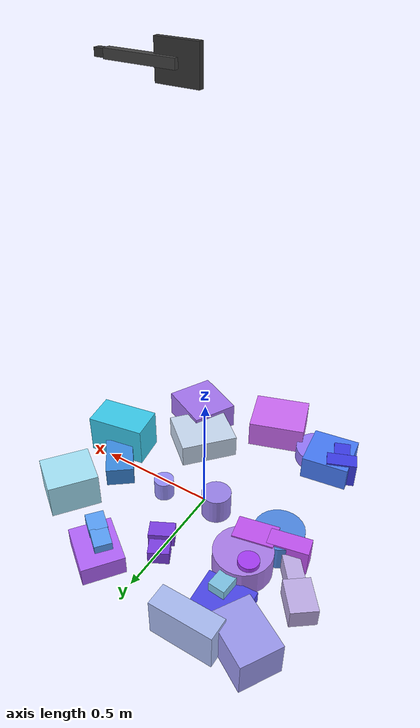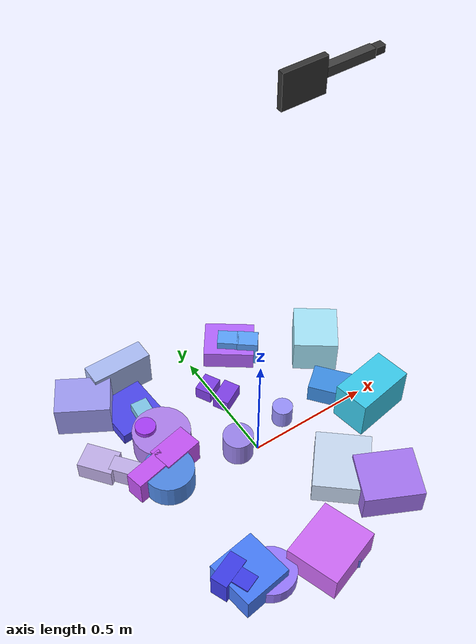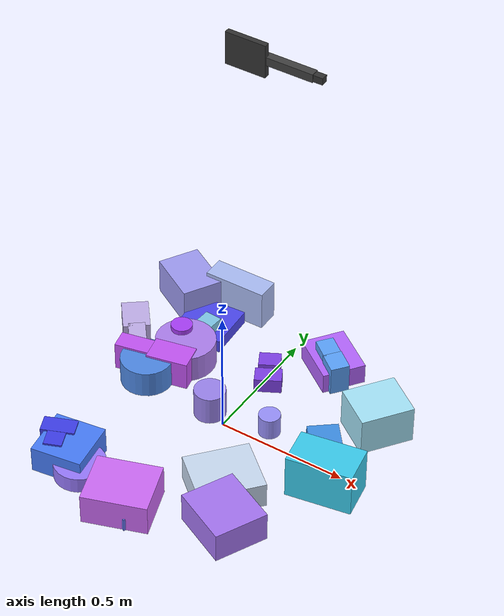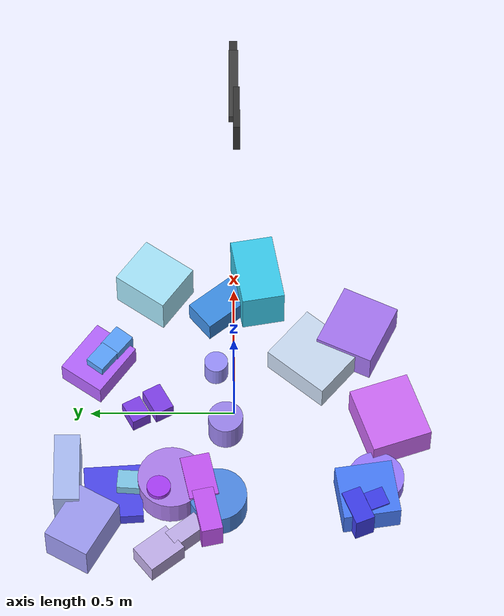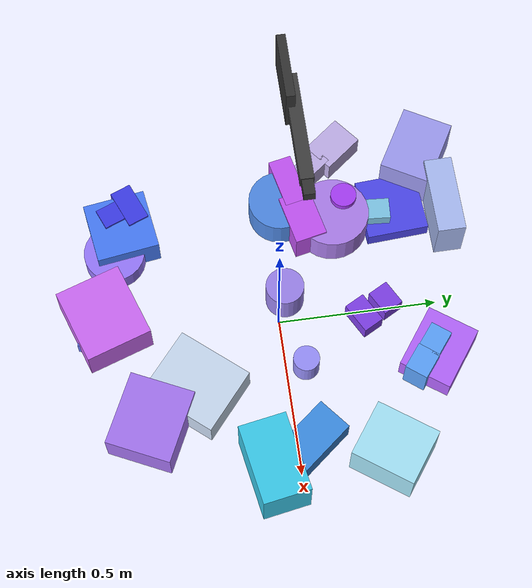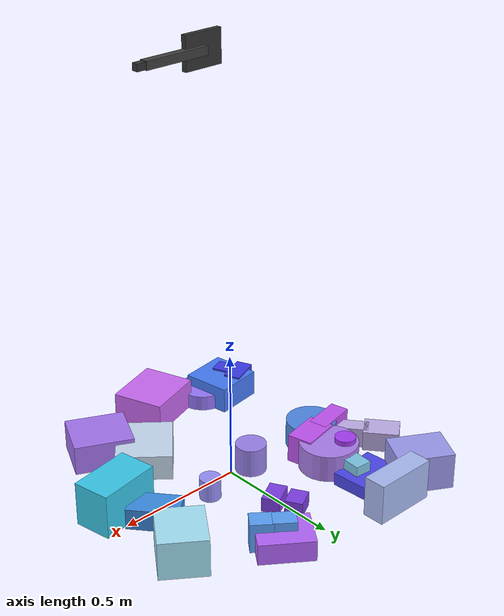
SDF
<sdf version="1.7">
 <world name="warehouse">
  <physics type="ode"><max_step_size>0.003</max_step_size><real_time_factor>1.0</real_time_factor></physics>
  <plugin name="ignition::gazebo::systems::Physics" filename="libignition-gazebo-physics-system.so"/>
  <plugin name="ignition::gazebo::systems::UserCommands" filename="libignition-gazebo-user-commands-system.so"/>
  <plugin name="ignition::gazebo::systems::SceneBroadcaster" filename="libignition-gazebo-scene-broadcaster-system.so"/>
  <plugin filename="gz-sim-imu-system" name="gz::sim::systems::Imu"/>
  <plugin filename="gz-sim-sensors-system" name="gz::sim::systems::Sensors">
   <render_engine>ogre2</render_engine>
  </plugin>
  <plugin filename="gz-sim-contact-system" name="gz::sim::systems::Contact"/>
  <scene>
   <ambient>0.4 0.4 0.4 1</ambient>
   <background>0.7 0.7 0.7 1</background>
   <shadows>0</shadows>
   <grid>false</grid>
  </scene>
  <model name="ground_plane">
   <static>true</static>
   <link name="link">
    <collision name="collision">
     <geometry><plane><normal>0.0 0.0 1</normal><size>1 1</size></plane></geometry>
    </collision>
   </link>
  </model>
  <model name="obj_box_0">
   <static>0</static>
   <pose>0.4084 0.0471 0.0415 0.0000 0.0000 -0.8880</pose>
   <link name="link">
    <visual name="obj_box_0_visual">
     <geometry><box><size>0.193 0.116 0.083</size></box></geometry>
     <material><ambient>0.24 0.56 0.90 1.00</ambient><diffuse>0.24 0.56 0.90 1.00</diffuse></material>
    </visual>
    <collision name="obj_box_0_collision">
     <geometry><box><size>0.193 0.116 0.083</size></box></geometry>
    </collision>
    <inertial>
     <mass>0.374</mass>
     <inertia>
      <ixx>0.010000</ixx>
      <iyy>0.010000</iyy>
      <izz>0.010000</izz>
      <ixy>0.000000</ixy>
      <ixz>0.000000</ixz>
      <iyz>0.000000</iyz>
     </inertia>
    </inertial>
   </link>
  </model>
  <model name="obj_L_1">
   <static>0</static>
   <pose>-0.0145 0.3396 0.029 0.0000 0.0000 -1.0742</pose>
   <link name="linkA">
    <visual name="obj_L_1_A_visual">
     <geometry><box><size>0.068 0.083 0.058</size></box></geometry>
     <material><ambient>0.50 0.25 0.91 1.00</ambient><diffuse>0.50 0.25 0.91 1.00</diffuse></material>
    </visual>
    <collision name="obj_L_1_A_collision">
     <geometry><box><size>0.068 0.083 0.058</size></box></geometry>
    </collision>
    <inertial>
     <mass>0.200</mass>
     <inertia>
      <ixx>0.010000</ixx>
      <iyy>0.010000</iyy>
      <izz>0.010000</izz>
      <ixy>0.000000</ixy>
      <ixz>0.000000</ixz>
      <iyz>0.000000</iyz>
     </inertia>
    </inertial>
   </link>
   <link name="linkB">
    <visual name="obj_L_1_B_visual">
     <geometry><box><size>0.068 0.102 0.058</size></box></geometry>
     <material><ambient>0.50 0.25 0.91 1.00</ambient><diffuse>0.50 0.25 0.91 1.00</diffuse></material>
    </visual>
    <collision name="obj_L_1_B_collision">
     <geometry><box><size>0.068 0.102 0.058</size></box></geometry>
    </collision>
    <inertial>
     <mass>0.200</mass>
     <inertia>
      <ixx>0.010000</ixx>
      <iyy>0.010000</iyy>
      <izz>0.010000</izz>
      <ixy>0.000000</ixy>
      <ixz>0.000000</ixz>
      <iyz>0.000000</iyz>
     </inertia>
    </inertial>
    <pose>0.0850 0.0000 0.0000 0.0000 0.0000 0.0000</pose>
   </link>
   <joint name="obj_L_1_fixed" type="fixed"><parent>linkA</parent><child>linkB</child></joint>
  </model>
  <model name="obj_L_2">
   <static>0</static>
   <pose>-0.3084 0.3435 0.046 0.0000 0.0000 -1.6410</pose>
   <link name="linkA">
    <visual name="obj_L_2_A_visual">
     <geometry><box><size>0.111 0.068 0.092</size></box></geometry>
     <material><ambient>0.50 0.78 0.91 1.00</ambient><diffuse>0.50 0.78 0.91 1.00</diffuse></material>
    </visual>
    <collision name="obj_L_2_A_collision">
     <geometry><box><size>0.111 0.068 0.092</size></box></geometry>
    </collision>
    <inertial>
     <mass>0.200</mass>
     <inertia>
      <ixx>0.010000</ixx>
      <iyy>0.010000</iyy>
      <izz>0.010000</izz>
      <ixy>0.000000</ixy>
      <ixz>0.000000</ixz>
      <iyz>0.000000</iyz>
     </inertia>
    </inertial>
   </link>
   <link name="linkB">
    <visual name="obj_L_2_B_visual">
     <geometry><box><size>0.111 0.057 0.092</size></box></geometry>
     <material><ambient>0.50 0.78 0.91 1.00</ambient><diffuse>0.50 0.78 0.91 1.00</diffuse></material>
    </visual>
    <collision name="obj_L_2_B_collision">
     <geometry><box><size>0.111 0.057 0.092</size></box></geometry>
    </collision>
    <inertial>
     <mass>0.200</mass>
     <inertia>
      <ixx>0.010000</ixx>
      <iyy>0.010000</iyy>
      <izz>0.010000</izz>
      <ixy>0.000000</ixy>
      <ixz>0.000000</ixz>
      <iyz>0.000000</iyz>
     </inertia>
    </inertial>
    <pose>0.0838 0.0000 0.0000 0.0000 0.0000 0.0000</pose>
   </link>
   <joint name="obj_L_2_fixed" type="fixed"><parent>linkA</parent><child>linkB</child></joint>
  </model>
  <model name="obj_L_3">
   <static>0</static>
   <pose>0.1648 0.4589 0.0585 0.0000 0.0000 -0.6620</pose>
   <link name="linkA">
    <visual name="obj_L_3_A_visual">
     <geometry><box><size>0.087 0.069 0.117</size></box></geometry>
     <material><ambient>0.36 0.64 0.99 1.00</ambient><diffuse>0.36 0.64 0.99 1.00</diffuse></material>
    </visual>
    <collision name="obj_L_3_A_collision">
     <geometry><box><size>0.087 0.069 0.117</size></box></geometry>
    </collision>
    <inertial>
     <mass>0.200</mass>
     <inertia>
      <ixx>0.010000</ixx>
      <iyy>0.010000</iyy>
      <izz>0.010000</izz>
      <ixy>0.000000</ixy>
      <ixz>0.000000</ixz>
      <iyz>0.000000</iyz>
     </inertia>
    </inertial>
   </link>
   <link name="linkB">
    <visual name="obj_L_3_B_visual">
     <geometry><box><size>0.087 0.073 0.117</size></box></geometry>
     <material><ambient>0.36 0.64 0.99 1.00</ambient><diffuse>0.36 0.64 0.99 1.00</diffuse></material>
    </visual>
    <collision name="obj_L_3_B_collision">
     <geometry><box><size>0.087 0.073 0.117</size></box></geometry>
    </collision>
    <inertial>
     <mass>0.200</mass>
     <inertia>
      <ixx>0.010000</ixx>
      <iyy>0.010000</iyy>
      <izz>0.010000</izz>
      <ixy>0.000000</ixy>
      <ixz>0.000000</ixz>
      <iyz>0.000000</iyz>
     </inertia>
    </inertial>
    <pose>0.0805 0.0000 0.0000 0.0000 0.0000 0.0000</pose>
   </link>
   <joint name="obj_L_3_fixed" type="fixed"><parent>linkA</parent><child>linkB</child></joint>
  </model>
  <model name="obj_cyl_4">
   <static>0</static>
   <pose>-0.2833 -0.4864 0.031 0.0000 0.0000 1.8573</pose>
   <link name="link">
    <visual name="obj_cyl_4_visual">
     <geometry><cylinder><radius>0.096</radius><length>0.062</length></cylinder></geometry>
     <material><ambient>0.60 0.48 1.00 1.00</ambient><diffuse>0.60 0.48 1.00 1.00</diffuse></material>
    </visual>
    <collision name="obj_cyl_4_collision">
     <geometry><cylinder><radius>0.096</radius><length>0.062</length></cylinder></geometry>
    </collision>
    <inertial>
     <mass>0.361</mass>
     <inertia>
      <ixx>0.010000</ixx>
      <iyy>0.010000</iyy>
      <izz>0.010000</izz>
      <ixy>0.000000</ixy>
      <ixz>0.000000</ixz>
      <iyz>0.000000</iyz>
     </inertia>
    </inertial>
   </link>
  </model>
  <model name="obj_box_5">
   <static>0</static>
   <pose>0.4856 -0.0819 0.087 0.0000 0.0000 -1.3965</pose>
   <link name="link">
    <visual name="obj_box_5_visual">
     <geometry><box><size>0.149 0.248 0.174</size></box></geometry>
     <material><ambient>0.23 0.80 0.93 1.00</ambient><diffuse>0.23 0.80 0.93 1.00</diffuse></material>
    </visual>
    <collision name="obj_box_5_collision">
     <geometry><box><size>0.149 0.248 0.174</size></box></geometry>
    </collision>
    <inertial>
     <mass>1.288</mass>
     <inertia>
      <ixx>0.010000</ixx>
      <iyy>0.010000</iyy>
      <izz>0.010000</izz>
      <ixy>0.000000</ixy>
      <ixz>0.000000</ixz>
      <iyz>0.000000</iyz>
     </inertia>
    </inertial>
   </link>
  </model>
  <model name="obj_box_6">
   <static>0</static>
   <pose>-0.3337 0.4126 0.0255 0.0000 0.0000 0.0656</pose>
   <link name="link">
    <visual name="obj_box_6_visual">
     <geometry><box><size>0.197 0.196 0.051</size></box></geometry>
     <material><ambient>0.30 0.28 0.93 1.00</ambient><diffuse>0.30 0.28 0.93 1.00</diffuse></material>
    </visual>
    <collision name="obj_box_6_collision">
     <geometry><box><size>0.197 0.196 0.051</size></box></geometry>
    </collision>
    <inertial>
     <mass>0.394</mass>
     <inertia>
      <ixx>0.010000</ixx>
      <iyy>0.010000</iyy>
      <izz>0.010000</izz>
      <ixy>0.000000</ixy>
      <ixz>0.000000</ixz>
      <iyz>0.000000</iyz>
     </inertia>
    </inertial>
   </link>
  </model>
  <model name="obj_L_7">
   <static>0</static>
   <pose>-0.4341 0.0908 0.057 0.0000 0.0000 0.2148</pose>
   <link name="linkA">
    <visual name="obj_L_7_A_visual">
     <geometry><box><size>0.161 0.074 0.114</size></box></geometry>
     <material><ambient>0.77 0.33 0.96 1.00</ambient><diffuse>0.77 0.33 0.96 1.00</diffuse></material>
    </visual>
    <collision name="obj_L_7_A_collision">
     <geometry><box><size>0.161 0.074 0.114</size></box></geometry>
    </collision>
    <inertial>
     <mass>0.271</mass>
     <inertia>
      <ixx>0.010000</ixx>
      <iyy>0.010000</iyy>
      <izz>0.010000</izz>
      <ixy>0.000000</ixy>
      <ixz>0.000000</ixz>
      <iyz>0.000000</iyz>
     </inertia>
    </inertial>
   </link>
   <link name="linkB">
    <visual name="obj_L_7_B_visual">
     <geometry><box><size>0.161 0.102 0.114</size></box></geometry>
     <material><ambient>0.77 0.33 0.96 1.00</ambient><diffuse>0.77 0.33 0.96 1.00</diffuse></material>
    </visual>
    <collision name="obj_L_7_B_collision">
     <geometry><box><size>0.161 0.102 0.114</size></box></geometry>
    </collision>
    <inertial>
     <mass>0.372</mass>
     <inertia>
      <ixx>0.010000</ixx>
      <iyy>0.010000</iyy>
      <izz>0.010000</izz>
      <ixy>0.000000</ixy>
      <ixz>0.000000</ixz>
      <iyz>0.000000</iyz>
     </inertia>
    </inertial>
    <pose>0.1313 0.0000 0.0000 0.0000 0.0000 0.0000</pose>
   </link>
   <joint name="obj_L_7_fixed" type="fixed"><parent>linkA</parent><child>linkB</child></joint>
  </model>
  <model name="obj_box_8">
   <static>0</static>
   <pose>0.2922 -0.4316 0.0585 0.0000 0.0000 -2.0180</pose>
   <link name="link">
    <visual name="obj_box_8_visual">
     <geometry><box><size>0.205 0.232 0.117</size></box></geometry>
     <material><ambient>0.65 0.46 0.95 1.00</ambient><diffuse>0.65 0.46 0.95 1.00</diffuse></material>
    </visual>
    <collision name="obj_box_8_collision">
     <geometry><box><size>0.205 0.232 0.117</size></box></geometry>
    </collision>
    <inertial>
     <mass>1.114</mass>
     <inertia>
      <ixx>0.010000</ixx>
      <iyy>0.010000</iyy>
      <izz>0.010000</izz>
      <ixy>0.000000</ixy>
      <ixz>0.000000</ixz>
      <iyz>0.000000</iyz>
     </inertia>
    </inertial>
   </link>
  </model>
  <model name="obj_L_9">
   <static>0</static>
   <pose>-0.4188 -0.4200 0.056 0.0000 0.0000 -1.1816</pose>
   <link name="linkA">
    <visual name="obj_L_9_A_visual">
     <geometry><box><size>0.068 0.126 0.112</size></box></geometry>
     <material><ambient>0.24 0.24 0.92 1.00</ambient><diffuse>0.24 0.24 0.92 1.00</diffuse></material>
    </visual>
    <collision name="obj_L_9_A_collision">
     <geometry><box><size>0.068 0.126 0.112</size></box></geometry>
    </collision>
    <inertial>
     <mass>0.200</mass>
     <inertia>
      <ixx>0.010000</ixx>
      <iyy>0.010000</iyy>
      <izz>0.010000</izz>
      <ixy>0.000000</ixy>
      <ixz>0.000000</ixz>
      <iyz>0.000000</iyz>
     </inertia>
    </inertial>
   </link>
   <link name="linkB">
    <visual name="obj_L_9_B_visual">
     <geometry><box><size>0.068 0.068 0.112</size></box></geometry>
     <material><ambient>0.24 0.24 0.92 1.00</ambient><diffuse>0.24 0.24 0.92 1.00</diffuse></material>
    </visual>
    <collision name="obj_L_9_B_collision">
     <geometry><box><size>0.068 0.068 0.112</size></box></geometry>
    </collision>
    <inertial>
     <mass>0.200</mass>
     <inertia>
      <ixx>0.010000</ixx>
      <iyy>0.010000</iyy>
      <izz>0.010000</izz>
      <ixy>0.000000</ixy>
      <ixz>0.000000</ixz>
      <iyz>0.000000</iyz>
     </inertia>
    </inertial>
    <pose>0.0681 0.0000 0.0000 0.0000 0.0000 0.0000</pose>
   </link>
   <joint name="obj_L_9_fixed" type="fixed"><parent>linkA</parent><child>linkB</child></joint>
  </model>
  <model name="obj_cyl_10">
   <static>0</static>
   <pose>-0.3075 0.2149 0.054 0.0000 0.0000 -1.0834</pose>
   <link name="link">
    <visual name="obj_cyl_10_visual">
     <geometry><cylinder><radius>0.115</radius><length>0.108</length></cylinder></geometry>
     <material><ambient>0.68 0.50 0.93 1.00</ambient><diffuse>0.68 0.50 0.93 1.00</diffuse></material>
    </visual>
    <collision name="obj_cyl_10_collision">
     <geometry><cylinder><radius>0.115</radius><length>0.108</length></cylinder></geometry>
    </collision>
    <inertial>
     <mass>0.893</mass>
     <inertia>
      <ixx>0.010000</ixx>
      <iyy>0.010000</iyy>
      <izz>0.010000</izz>
      <ixy>0.000000</ixy>
      <ixz>0.000000</ixz>
      <iyz>0.000000</iyz>
     </inertia>
    </inertial>
   </link>
  </model>
  <model name="obj_cyl_11">
   <static>0</static>
   <pose>-0.0750 0.0293 0.0565 0.0000 0.0000 1.8866</pose>
   <link name="link">
    <visual name="obj_cyl_11_visual">
     <geometry><cylinder><radius>0.060</radius><length>0.113</length></cylinder></geometry>
     <material><ambient>0.61 0.52 0.93 1.00</ambient><diffuse>0.61 0.52 0.93 1.00</diffuse></material>
    </visual>
    <collision name="obj_cyl_11_collision">
     <geometry><cylinder><radius>0.060</radius><length>0.113</length></cylinder></geometry>
    </collision>
    <inertial>
     <mass>0.252</mass>
     <inertia>
      <ixx>0.010000</ixx>
      <iyy>0.010000</iyy>
      <izz>0.010000</izz>
      <ixy>0.000000</ixy>
      <ixz>0.000000</ixz>
      <iyz>0.000000</iyz>
     </inertia>
    </inertial>
   </link>
  </model>
  <model name="obj_L_12">
   <static>0</static>
   <pose>-0.4879 0.1597 0.04 0.0000 0.0000 2.2413</pose>
   <link name="linkA">
    <visual name="obj_L_12_A_visual">
     <geometry><box><size>0.139 0.065 0.080</size></box></geometry>
     <material><ambient>0.76 0.69 0.92 1.00</ambient><diffuse>0.76 0.69 0.92 1.00</diffuse></material>
    </visual>
    <collision name="obj_L_12_A_collision">
     <geometry><box><size>0.139 0.065 0.080</size></box></geometry>
    </collision>
    <inertial>
     <mass>0.200</mass>
     <inertia>
      <ixx>0.010000</ixx>
      <iyy>0.010000</iyy>
      <izz>0.010000</izz>
      <ixy>0.000000</ixy>
      <ixz>0.000000</ixz>
      <iyz>0.000000</iyz>
     </inertia>
    </inertial>
   </link>
   <link name="linkB">
    <visual name="obj_L_12_B_visual">
     <geometry><box><size>0.139 0.103 0.080</size></box></geometry>
     <material><ambient>0.76 0.69 0.92 1.00</ambient><diffuse>0.76 0.69 0.92 1.00</diffuse></material>
    </visual>
    <collision name="obj_L_12_B_collision">
     <geometry><box><size>0.139 0.103 0.080</size></box></geometry>
    </collision>
    <inertial>
     <mass>0.230</mass>
     <inertia>
      <ixx>0.010000</ixx>
      <iyy>0.010000</iyy>
      <izz>0.010000</izz>
      <ixy>0.000000</ixy>
      <ixz>0.000000</ixz>
      <iyz>0.000000</iyz>
     </inertia>
    </inertial>
    <pose>0.1210 0.0000 0.0000 0.0000 0.0000 0.0000</pose>
   </link>
   <joint name="obj_L_12_fixed" type="fixed"><parent>linkA</parent><child>linkB</child></joint>
  </model>
  <model name="obj_cyl_13">
   <static>0</static>
   <pose>0.1604 0.0628 0.0425 0.0000 0.0000 0.2221</pose>
   <link name="link">
    <visual name="obj_cyl_13_visual">
     <geometry><cylinder><radius>0.041</radius><length>0.085</length></cylinder></geometry>
     <material><ambient>0.60 0.57 0.99 1.00</ambient><diffuse>0.60 0.57 0.99 1.00</diffuse></material>
    </visual>
    <collision name="obj_cyl_13_collision">
     <geometry><cylinder><radius>0.041</radius><length>0.085</length></cylinder></geometry>
    </collision>
    <inertial>
     <mass>0.200</mass>
     <inertia>
      <ixx>0.010000</ixx>
      <iyy>0.010000</iyy>
      <izz>0.010000</izz>
      <ixy>0.000000</ixy>
      <ixz>0.000000</ixz>
      <iyz>0.000000</iyz>
     </inertia>
    </inertial>
   </link>
  </model>
  <model name="obj_box_14">
   <static>0</static>
   <pose>0.1789 0.4730 0.041 0.0000 0.0000 -0.6233</pose>
   <link name="link">
    <visual name="obj_box_14_visual">
     <geometry><box><size>0.207 0.168 0.082</size></box></geometry>
     <material><ambient>0.71 0.40 1.00 1.00</ambient><diffuse>0.71 0.40 1.00 1.00</diffuse></material>
    </visual>
    <collision name="obj_box_14_collision">
     <geometry><box><size>0.207 0.168 0.082</size></box></geometry>
    </collision>
    <inertial>
     <mass>0.572</mass>
     <inertia>
      <ixx>0.010000</ixx>
      <iyy>0.010000</iyy>
      <izz>0.010000</izz>
      <ixy>0.000000</ixy>
      <ixz>0.000000</ixz>
      <iyz>0.000000</iyz>
     </inertia>
    </inertial>
   </link>
  </model>
  <model name="obj_box_15">
   <static>0</static>
   <pose>-0.3541 -0.4543 0.0525 0.0000 0.0000 -2.9922</pose>
   <link name="link">
    <visual name="obj_box_15_visual">
     <geometry><box><size>0.195 0.197 0.105</size></box></geometry>
     <material><ambient>0.28 0.49 0.98 1.00</ambient><diffuse>0.28 0.49 0.98 1.00</diffuse></material>
    </visual>
    <collision name="obj_box_15_collision">
     <geometry><box><size>0.195 0.197 0.105</size></box></geometry>
    </collision>
    <inertial>
     <mass>0.804</mass>
     <inertia>
      <ixx>0.010000</ixx>
      <iyy>0.010000</iyy>
      <izz>0.010000</izz>
      <ixy>0.000000</ixy>
      <ixz>0.000000</ixz>
      <iyz>0.000000</iyz>
     </inertia>
    </inertial>
   </link>
  </model>
  <model name="obj_cyl_16">
   <static>0</static>
   <pose>-0.3725 0.0550 0.053 0.0000 0.0000 -1.1413</pose>
   <link name="link">
    <visual name="obj_cyl_16_visual">
     <geometry><cylinder><radius>0.099</radius><length>0.106</length></cylinder></geometry>
     <material><ambient>0.31 0.54 0.90 1.00</ambient><diffuse>0.31 0.54 0.90 1.00</diffuse></material>
    </visual>
    <collision name="obj_cyl_16_collision">
     <geometry><cylinder><radius>0.099</radius><length>0.106</length></cylinder></geometry>
    </collision>
    <inertial>
     <mass>0.648</mass>
     <inertia>
      <ixx>0.010000</ixx>
      <iyy>0.010000</iyy>
      <izz>0.010000</izz>
      <ixy>0.000000</ixy>
      <ixz>0.000000</ixz>
      <iyz>0.000000</iyz>
     </inertia>
    </inertial>
   </link>
  </model>
  <model name="obj_box_17">
   <static>0</static>
   <pose>-0.2964 0.5690 0.0805 0.0000 0.0000 1.5793</pose>
   <link name="link">
    <visual name="obj_box_17_visual">
     <geometry><box><size>0.088 0.249 0.161</size></box></geometry>
     <material><ambient>0.67 0.74 0.96 1.00</ambient><diffuse>0.67 0.74 0.96 1.00</diffuse></material>
    </visual>
    <collision name="obj_box_17_collision">
     <geometry><box><size>0.088 0.249 0.161</size></box></geometry>
    </collision>
    <inertial>
     <mass>0.708</mass>
     <inertia>
      <ixx>0.010000</ixx>
      <iyy>0.010000</iyy>
      <izz>0.010000</izz>
      <ixy>0.000000</ixy>
      <ixz>0.000000</ixz>
      <iyz>0.000000</iyz>
     </inertia>
    </inertial>
   </link>
  </model>
  <model name="obj_box_18">
   <static>0</static>
   <pose>-0.0615 -0.5381 0.06 0.0000 0.0000 0.3314</pose>
   <link name="link">
    <visual name="obj_box_18_visual">
     <geometry><box><size>0.242 0.211 0.120</size></box></geometry>
     <material><ambient>0.81 0.42 0.97 1.00</ambient><diffuse>0.81 0.42 0.97 1.00</diffuse></material>
    </visual>
    <collision name="obj_box_18_collision">
     <geometry><box><size>0.242 0.211 0.120</size></box></geometry>
    </collision>
    <inertial>
     <mass>1.224</mass>
     <inertia>
      <ixx>0.010000</ixx>
      <iyy>0.010000</iyy>
      <izz>0.010000</izz>
      <ixy>0.000000</ixy>
      <ixz>0.000000</ixz>
      <iyz>0.000000</iyz>
     </inertia>
    </inertial>
   </link>
  </model>
  <model name="obj_box_19">
   <static>0</static>
   <pose>-0.4868 0.5129 0.0725 0.0000 0.0000 1.0511</pose>
   <link name="link">
    <visual name="obj_box_19_visual">
     <geometry><box><size>0.163 0.217 0.145</size></box></geometry>
     <material><ambient>0.62 0.61 0.95 1.00</ambient><diffuse>0.62 0.61 0.95 1.00</diffuse></material>
    </visual>
    <collision name="obj_box_19_collision">
     <geometry><box><size>0.163 0.217 0.145</size></box></geometry>
    </collision>
    <inertial>
     <mass>1.027</mass>
     <inertia>
      <ixx>0.010000</ixx>
      <iyy>0.010000</iyy>
      <izz>0.010000</izz>
      <ixy>0.000000</ixy>
      <ixz>0.000000</ixz>
      <iyz>0.000000</iyz>
     </inertia>
    </inertial>
   </link>
  </model>
  <model name="obj_box_20">
   <static>0</static>
   <pose>0.1921 -0.2808 0.0505 0.0000 0.0000 0.8688</pose>
   <link name="link">
    <visual name="obj_box_20_visual">
     <geometry><box><size>0.246 0.216 0.101</size></box></geometry>
     <material><ambient>0.79 0.86 0.95 1.00</ambient><diffuse>0.79 0.86 0.95 1.00</diffuse></material>
    </visual>
    <collision name="obj_box_20_collision">
     <geometry><box><size>0.246 0.216 0.101</size></box></geometry>
    </collision>
    <inertial>
     <mass>1.070</mass>
     <inertia>
      <ixx>0.010000</ixx>
      <iyy>0.010000</iyy>
      <izz>0.010000</izz>
      <ixy>0.000000</ixy>
      <ixz>0.000000</ixz>
      <iyz>0.000000</iyz>
     </inertia>
    </inertial>
   </link>
  </model>
  <model name="obj_cyl_21">
   <static>0</static>
   <pose>-0.3532 0.2564 0.064 0.0000 0.0000 -0.5206</pose>
   <link name="link">
    <visual name="obj_cyl_21_visual">
     <geometry><cylinder><radius>0.041</radius><length>0.128</length></cylinder></geometry>
     <material><ambient>0.66 0.24 0.97 1.00</ambient><diffuse>0.66 0.24 0.97 1.00</diffuse></material>
    </visual>
    <collision name="obj_cyl_21_collision">
     <geometry><cylinder><radius>0.041</radius><length>0.128</length></cylinder></geometry>
    </collision>
    <inertial>
     <mass>0.200</mass>
     <inertia>
      <ixx>0.010000</ixx>
      <iyy>0.010000</iyy>
      <izz>0.010000</izz>
      <ixy>0.000000</ixy>
      <ixz>0.000000</ixz>
      <iyz>0.000000</iyz>
     </inertia>
    </inertial>
   </link>
  </model>
  <model name="obj_box_22">
   <static>0</static>
   <pose>0.4814 0.2802 0.075 0.0000 0.0000 0.9503</pose>
   <link name="link">
    <visual name="obj_box_22_visual">
     <geometry><box><size>0.204 0.180 0.150</size></box></geometry>
     <material><ambient>0.65 0.90 0.98 1.00</ambient><diffuse>0.65 0.90 0.98 1.00</diffuse></material>
    </visual>
    <collision name="obj_box_22_collision">
     <geometry><box><size>0.204 0.180 0.150</size></box></geometry>
    </collision>
    <inertial>
     <mass>1.099</mass>
     <inertia>
      <ixx>0.010000</ixx>
      <iyy>0.010000</iyy>
      <izz>0.010000</izz>
      <ixy>0.000000</ixy>
      <ixz>0.000000</ixz>
      <iyz>0.000000</iyz>
     </inertia>
    </inertial>
   </link>
  </model>
  <model name="obj_box_23">
   <static>0</static>
   <pose>-0.0513 -0.5546 0.026 0.0000 0.0000 -1.9523</pose>
   <link name="link">
    <visual name="obj_box_23_visual">
     <geometry><box><size>0.098 0.170 0.052</size></box></geometry>
     <material><ambient>0.40 0.47 0.97 1.00</ambient><diffuse>0.40 0.47 0.97 1.00</diffuse></material>
    </visual>
    <collision name="obj_box_23_collision">
     <geometry><box><size>0.098 0.170 0.052</size></box></geometry>
    </collision>
    <inertial>
     <mass>0.200</mass>
     <inertia>
      <ixx>0.010000</ixx>
      <iyy>0.010000</iyy>
      <izz>0.010000</izz>
      <ixy>0.000000</ixy>
      <ixz>0.000000</ixz>
      <iyz>0.000000</iyz>
     </inertia>
    </inertial>
   </link>
  </model>
  <model name="realsense_mount_0">
   <static>1</static>
   <pose>0.1000 0.0000 1.6000 0.0000 0.0000 0.0000</pose>
   <link name="bracket_link">
    <visual name="realsense_mount_0_wall_plate_visual">
     <geometry><box><size>0.150 0.020 0.120</size></box></geometry>
     <material><ambient>0.20 0.20 0.20 1.00</ambient><diffuse>0.20 0.20 0.20 1.00</diffuse></material>
     <pose>0.0000 -0.0100 0.0600 0.0000 0.0000 0.0000</pose>
    </visual>
    <visual name="realsense_mount_0_arm_visual">
     <geometry><box><size>0.250 0.030 0.030</size></box></geometry>
     <material><ambient>0.25 0.25 0.25 1.00</ambient><diffuse>0.25 0.25 0.25 1.00</diffuse></material>
     <pose>0.1200 0.0000 0.0600 0.0000 0.0000 0.0000</pose>
    </visual>
    <collision name="realsense_mount_0_arm_col_collision">
     <geometry><box><size>0.250 0.030 0.030</size></box></geometry>
    </collision>
    <inertial>
     <mass>0.500</mass>
     <inertia>
      <ixx>0.010000</ixx>
      <iyy>0.010000</iyy>
      <izz>0.010000</izz>
      <ixy>0.000000</ixy>
      <ixz>0.000000</ixz>
      <iyz>0.000000</iyz>
     </inertia>
    </inertial>
   </link>
   <link name="camera_link">
    <visual name="realsense_mount_0_body_visual">
     <geometry><box><size>0.120 0.025 0.025</size></box></geometry>
     <material><ambient>0.20 0.20 0.20 1.00</ambient><diffuse>0.20 0.20 0.20 1.00</diffuse></material>
     <pose>0.2200 0.0000 0.0600 0.0000 0.0000 0.0000</pose>
    </visual>
    <collision name="realsense_mount_0_body_col_collision">
     <geometry><box><size>0.120 0.025 0.025</size></box></geometry>
    </collision>
    <inertial>
     <mass>0.100</mass>
     <inertia>
      <ixx>0.010000</ixx>
      <iyy>0.010000</iyy>
      <izz>0.010000</izz>
      <ixy>0.000000</ixy>
      <ixz>0.000000</ixz>
      <iyz>0.000000</iyz>
     </inertia>
    </inertial>
    <sensor name="realsense_mount_0_rgbd" type="rgbd_camera">
     <update_rate>30</update_rate>
     <pose>0.2200 0.0000 0.0600 0.0000 0.0000 0.0000</pose>
     <camera>
      <horizontal_fov>1.204277</horizontal_fov>
      <image><width>848</width><height>480</height><format>R8G8B8</format></image>
      <clip><near>0.1</near><far>50.0</far></clip>
     </camera>
     <range><min>0.2</min><max>10.0</max></range>
     <noise><type>gaussian</type><mean>0.0</mean><stddev>0.002</stddev></noise>
    </sensor>
    <sensor name="realsense_mount_0_imu" type="imu"><update_rate>200</update_rate></sensor>
   </link>
   <joint name="realsense_mount_0_fixed" type="fixed">
    <parent>bracket_link</parent>
    <child>camera_link</child>
   </joint>
  </model>
  <model name="realsense_mount_1">
   <static>1</static>
   <pose>0.1000 0.0000 1.6000 0.0000 0.0000 0.0000</pose>
   <link name="bracket_link">
    <visual name="realsense_mount_1_wall_plate_visual">
     <geometry><box><size>0.150 0.020 0.120</size></box></geometry>
     <material><ambient>0.20 0.20 0.20 1.00</ambient><diffuse>0.20 0.20 0.20 1.00</diffuse></material>
     <pose>0.0000 -0.0100 0.0600 0.0000 0.0000 0.0000</pose>
    </visual>
    <visual name="realsense_mount_1_arm_visual">
     <geometry><box><size>0.250 0.030 0.030</size></box></geometry>
     <material><ambient>0.25 0.25 0.25 1.00</ambient><diffuse>0.25 0.25 0.25 1.00</diffuse></material>
     <pose>0.1200 0.0000 0.0600 0.0000 0.0000 0.0000</pose>
    </visual>
    <collision name="realsense_mount_1_arm_col_collision">
     <geometry><box><size>0.250 0.030 0.030</size></box></geometry>
    </collision>
    <inertial>
     <mass>0.500</mass>
     <inertia>
      <ixx>0.010000</ixx>
      <iyy>0.010000</iyy>
      <izz>0.010000</izz>
      <ixy>0.000000</ixy>
      <ixz>0.000000</ixz>
      <iyz>0.000000</iyz>
     </inertia>
    </inertial>
   </link>
   <link name="camera_link">
    <visual name="realsense_mount_1_body_visual">
     <geometry><box><size>0.120 0.025 0.025</size></box></geometry>
     <material><ambient>0.20 0.20 0.20 1.00</ambient><diffuse>0.20 0.20 0.20 1.00</diffuse></material>
     <pose>0.2200 0.0000 0.0600 0.0000 0.0000 0.0000</pose>
    </visual>
    <collision name="realsense_mount_1_body_col_collision">
     <geometry><box><size>0.120 0.025 0.025</size></box></geometry>
    </collision>
    <inertial>
     <mass>0.100</mass>
     <inertia>
      <ixx>0.010000</ixx>
      <iyy>0.010000</iyy>
      <izz>0.010000</izz>
      <ixy>0.000000</ixy>
      <ixz>0.000000</ixz>
      <iyz>0.000000</iyz>
     </inertia>
    </inertial>
    <sensor name="realsense_mount_1_rgbd" type="rgbd_camera">
     <update_rate>30</update_rate>
     <pose>0.2200 0.0000 0.0600 0.0000 0.0000 0.0000</pose>
     <camera>
      <horizontal_fov>1.204277</horizontal_fov>
      <image><width>848</width><height>480</height><format>R8G8B8</format></image>
      <clip><near>0.1</near><far>50.0</far></clip>
     </camera>
     <range><min>0.2</min><max>10.0</max></range>
     <noise><type>gaussian</type><mean>0.0</mean><stddev>0.002</stddev></noise>
    </sensor>
    <sensor name="realsense_mount_1_imu" type="imu"><update_rate>200</update_rate></sensor>
   </link>
   <joint name="realsense_mount_1_fixed" type="fixed">
    <parent>bracket_link</parent>
    <child>camera_link</child>
   </joint>
  </model>
  <model name="realsense_mount_2">
   <static>1</static>
   <pose>0.1000 0.0000 1.6000 0.0000 0.0000 0.0000</pose>
   <link name="bracket_link">
    <visual name="realsense_mount_2_wall_plate_visual">
     <geometry><box><size>0.150 0.020 0.120</size></box></geometry>
     <material><ambient>0.20 0.20 0.20 1.00</ambient><diffuse>0.20 0.20 0.20 1.00</diffuse></material>
     <pose>0.0000 -0.0100 0.0600 0.0000 0.0000 0.0000</pose>
    </visual>
    <visual name="realsense_mount_2_arm_visual">
     <geometry><box><size>0.250 0.030 0.030</size></box></geometry>
     <material><ambient>0.25 0.25 0.25 1.00</ambient><diffuse>0.25 0.25 0.25 1.00</diffuse></material>
     <pose>0.1200 0.0000 0.0600 0.0000 0.0000 0.0000</pose>
    </visual>
    <collision name="realsense_mount_2_arm_col_collision">
     <geometry><box><size>0.250 0.030 0.030</size></box></geometry>
    </collision>
    <inertial>
     <mass>0.500</mass>
     <inertia>
      <ixx>0.010000</ixx>
      <iyy>0.010000</iyy>
      <izz>0.010000</izz>
      <ixy>0.000000</ixy>
      <ixz>0.000000</ixz>
      <iyz>0.000000</iyz>
     </inertia>
    </inertial>
   </link>
   <link name="camera_link">
    <visual name="realsense_mount_2_body_visual">
     <geometry><box><size>0.120 0.025 0.025</size></box></geometry>
     <material><ambient>0.20 0.20 0.20 1.00</ambient><diffuse>0.20 0.20 0.20 1.00</diffuse></material>
     <pose>0.2200 0.0000 0.0600 0.0000 0.0000 0.0000</pose>
    </visual>
    <collision name="realsense_mount_2_body_col_collision">
     <geometry><box><size>0.120 0.025 0.025</size></box></geometry>
    </collision>
    <inertial>
     <mass>0.100</mass>
     <inertia>
      <ixx>0.010000</ixx>
      <iyy>0.010000</iyy>
      <izz>0.010000</izz>
      <ixy>0.000000</ixy>
      <ixz>0.000000</ixz>
      <iyz>0.000000</iyz>
     </inertia>
    </inertial>
    <sensor name="realsense_mount_2_rgbd" type="rgbd_camera">
     <update_rate>30</update_rate>
     <pose>0.2200 0.0000 0.0600 0.0000 0.0000 0.0000</pose>
     <camera>
      <horizontal_fov>1.204277</horizontal_fov>
      <image><width>848</width><height>480</height><format>R8G8B8</format></image>
      <clip><near>0.1</near><far>50.0</far></clip>
     </camera>
     <range><min>0.2</min><max>10.0</max></range>
     <noise><type>gaussian</type><mean>0.0</mean><stddev>0.002</stddev></noise>
    </sensor>
    <sensor name="realsense_mount_2_imu" type="imu"><update_rate>200</update_rate></sensor>
   </link>
   <joint name="realsense_mount_2_fixed" type="fixed">
    <parent>bracket_link</parent>
    <child>camera_link</child>
   </joint>
  </model>
  <model name="realsense_mount_3">
   <static>1</static>
   <pose>0.1000 0.0000 1.6000 0.0000 0.0000 0.0000</pose>
   <link name="bracket_link">
    <visual name="realsense_mount_3_wall_plate_visual">
     <geometry><box><size>0.150 0.020 0.120</size></box></geometry>
     <material><ambient>0.20 0.20 0.20 1.00</ambient><diffuse>0.20 0.20 0.20 1.00</diffuse></material>
     <pose>0.0000 -0.0100 0.0600 0.0000 0.0000 0.0000</pose>
    </visual>
    <visual name="realsense_mount_3_arm_visual">
     <geometry><box><size>0.250 0.030 0.030</size></box></geometry>
     <material><ambient>0.25 0.25 0.25 1.00</ambient><diffuse>0.25 0.25 0.25 1.00</diffuse></material>
     <pose>0.1200 0.0000 0.0600 0.0000 0.0000 0.0000</pose>
    </visual>
    <collision name="realsense_mount_3_arm_col_collision">
     <geometry><box><size>0.250 0.030 0.030</size></box></geometry>
    </collision>
    <inertial>
     <mass>0.500</mass>
     <inertia>
      <ixx>0.010000</ixx>
      <iyy>0.010000</iyy>
      <izz>0.010000</izz>
      <ixy>0.000000</ixy>
      <ixz>0.000000</ixz>
      <iyz>0.000000</iyz>
     </inertia>
    </inertial>
   </link>
   <link name="camera_link">
    <visual name="realsense_mount_3_body_visual">
     <geometry><box><size>0.120 0.025 0.025</size></box></geometry>
     <material><ambient>0.20 0.20 0.20 1.00</ambient><diffuse>0.20 0.20 0.20 1.00</diffuse></material>
     <pose>0.2200 0.0000 0.0600 0.0000 0.0000 0.0000</pose>
    </visual>
    <collision name="realsense_mount_3_body_col_collision">
     <geometry><box><size>0.120 0.025 0.025</size></box></geometry>
    </collision>
    <inertial>
     <mass>0.100</mass>
     <inertia>
      <ixx>0.010000</ixx>
      <iyy>0.010000</iyy>
      <izz>0.010000</izz>
      <ixy>0.000000</ixy>
      <ixz>0.000000</ixz>
      <iyz>0.000000</iyz>
     </inertia>
    </inertial>
    <sensor name="realsense_mount_3_rgbd" type="rgbd_camera">
     <update_rate>30</update_rate>
     <pose>0.2200 0.0000 0.0600 0.0000 0.0000 0.0000</pose>
     <camera>
      <horizontal_fov>1.204277</horizontal_fov>
      <image><width>848</width><height>480</height><format>R8G8B8</format></image>
      <clip><near>0.1</near><far>50.0</far></clip>
     </camera>
     <range><min>0.2</min><max>10.0</max></range>
     <noise><type>gaussian</type><mean>0.0</mean><stddev>0.002</stddev></noise>
    </sensor>
    <sensor name="realsense_mount_3_imu" type="imu"><update_rate>200</update_rate></sensor>
   </link>
   <joint name="realsense_mount_3_fixed" type="fixed">
    <parent>bracket_link</parent>
    <child>camera_link</child>
   </joint>
  </model>
  <light name="sun_main" type="directional">
   <pose>0.0000 0.0000 10.0000 0.3000 0.2000 0.0000</pose>
   <diffuse>1 1 1 1</diffuse>
   <specular>0.4 0.4 0.4 1</specular>
   <attenuation>
    <range>100.00</range>
    <constant>1.0000</constant>
    <linear>0.0100</linear>
    <quadratic>0.001000</quadratic>
   </attenuation>
   <direction>-0.2 0 -1</direction>
  </light>
  <light name="spot1" type="spot">
   <pose>2.0000 0.0000 3.0000 0.0000 0.0000 0.0000</pose>
   <diffuse>0.9 0.9 0.9 1</diffuse>
   <specular>0.2 0.2 0.2 1</specular>
   <attenuation>
    <range>20.00</range>
    <constant>1.0000</constant>
    <linear>0.0300</linear>
    <quadratic>0.005000</quadratic>
   </attenuation>
   <direction>0 0 -1</direction>
   <spot><inner_angle>0.50</inner_angle><outer_angle>0.90</outer_angle><falloff>0.60</falloff></spot>
  </light>
 </world>
</sdf>
